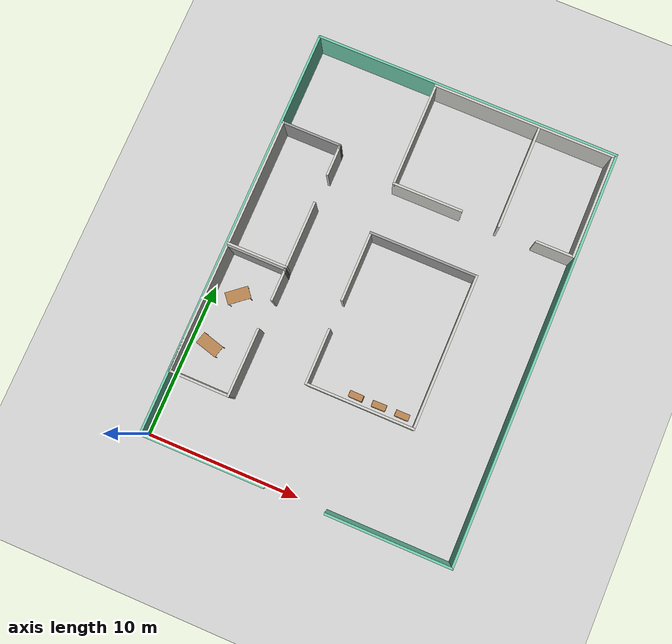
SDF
<sdf version="1.7">
 <world name="default">
  <light name="sun" type="directional">
   <pose>0 0 10 0 -0 0</pose>
   <diffuse>0.8 0.8 0.8 1</diffuse>
   <specular>0.2 0.2 0.2 1</specular>
   <attenuation>
    <range>1000</range>
    <constant>0.9</constant>
    <linear>0.01</linear>
    <quadratic>0.001</quadratic>
   </attenuation>
   <direction>-0.5 0.1 -0.9</direction>
   <spot><inner_angle>0</inner_angle><outer_angle>0</outer_angle><falloff>0</falloff></spot>
  </light>
  <model name="ground_plane">
   <static>1</static>
   <link name="link">
    <collision name="collision">
     <geometry><plane><normal>0 0 1</normal><size>100 100</size></plane></geometry>
     <surface>
      <contact><collide_bitmask>65535</collide_bitmask></contact>
      <friction><ode><mu>100</mu><mu2>50</mu2></ode></friction>
     </surface>
    </collision>
    <visual name="visual">
     <cast_shadows>0</cast_shadows>
     <geometry><plane><normal>0 0 1</normal><size>100 100</size></plane></geometry>
     <material>
      <script><uri>file://media/materials/scripts/gazebo.material</uri><name>Gazebo/Grey</name></script>
     </material>
    </visual>
   </link>
  </model>
  <gravity>0 0 -9.8</gravity>
  <magnetic_field>6e-06 2.3e-05 -4.2e-05</magnetic_field>
  <atmosphere type="adiabatic"/>
  <physics type="ode">
   <max_step_size>0.001</max_step_size>
   <real_time_factor>1</real_time_factor>
   <real_time_update_rate>1000</real_time_update_rate>
  </physics>
  <scene><ambient>0.4 0.4 0.4 1</ambient><background>0.7 0.7 0.7 1</background><shadows>1</shadows></scene>
  <spherical_coordinates>
   <surface_model>EARTH_WGS84</surface_model>
   <latitude_deg>0</latitude_deg>
   <longitude_deg>0</longitude_deg>
   <elevation>0</elevation>
   <heading_deg>0</heading_deg>
  </spherical_coordinates>
  <model name="table">
   <static>1</static>
   <link name="link">
    <collision name="surface">
     <pose>0 0 1 0 -0 0</pose>
     <geometry><box><size>1.5 0.8 0.03</size></box></geometry>
     <surface><friction><ode><mu>0.6</mu><mu2>0.6</mu2></ode></friction></surface>
    </collision>
    <visual name="visual1">
     <pose>0 0 1 0 -0 0</pose>
     <geometry><box><size>1.5 0.8 0.03</size></box></geometry>
     <material>
      <script><uri>file://media/materials/scripts/gazebo.material</uri><name>Gazebo/Wood</name></script>
     </material>
    </visual>
    <collision name="front_left_leg">
     <pose>0.68 0.38 0.5 0 -0 0</pose>
     <geometry><cylinder><radius>0.02</radius><length>1</length></cylinder></geometry>
    </collision>
    <visual name="front_left_leg">
     <pose>0.68 0.38 0.5 0 -0 0</pose>
     <geometry><cylinder><radius>0.02</radius><length>1</length></cylinder></geometry>
     <material>
      <script><uri>file://media/materials/scripts/gazebo.material</uri><name>Gazebo/Grey</name></script>
     </material>
    </visual>
    <collision name="front_right_leg">
     <pose>0.68 -0.38 0.5 0 -0 0</pose>
     <geometry><cylinder><radius>0.02</radius><length>1</length></cylinder></geometry>
    </collision>
    <visual name="front_right_leg">
     <pose>0.68 -0.38 0.5 0 -0 0</pose>
     <geometry><cylinder><radius>0.02</radius><length>1</length></cylinder></geometry>
     <material>
      <script><uri>file://media/materials/scripts/gazebo.material</uri><name>Gazebo/Grey</name></script>
     </material>
    </visual>
    <collision name="back_right_leg">
     <pose>-0.68 -0.38 0.5 0 -0 0</pose>
     <geometry><cylinder><radius>0.02</radius><length>1</length></cylinder></geometry>
    </collision>
    <visual name="back_right_leg">
     <pose>-0.68 -0.38 0.5 0 -0 0</pose>
     <geometry><cylinder><radius>0.02</radius><length>1</length></cylinder></geometry>
     <material>
      <script><uri>file://media/materials/scripts/gazebo.material</uri><name>Gazebo/Grey</name></script>
     </material>
    </visual>
    <collision name="back_left_leg">
     <pose>-0.68 0.38 0.5 0 -0 0</pose>
     <geometry><cylinder><radius>0.02</radius><length>1</length></cylinder></geometry>
    </collision>
    <visual name="back_left_leg">
     <pose>-0.68 0.38 0.5 0 -0 0</pose>
     <geometry><cylinder><radius>0.02</radius><length>1</length></cylinder></geometry>
     <material>
      <script><uri>file://media/materials/scripts/gazebo.material</uri><name>Gazebo/Grey</name></script>
     </material>
    </visual>
   </link>
   <pose>1.33542 6.4911 0 0 0 -0.267799</pose>
  </model>
  <model name="Room1">
   <pose>2.5201 8.28138 0 0 0 -1.57691</pose>
   <link name="Wall_0">
    <collision name="Wall_0_Collision">
     <geometry><box><size>2 0.15 2.5</size></box></geometry>
     <pose>0 0 1.25 0 -0 0</pose>
    </collision>
    <visual name="Wall_0_Visual">
     <pose>0 0 1.25 0 -0 0</pose>
     <geometry><box><size>2 0.15 2.5</size></box></geometry>
     <material>
      <script><uri>file://media/materials/scripts/gazebo.material</uri><name>Gazebo/CeilingTiled</name></script>
      <ambient>1 1 1 1</ambient>
     </material>
     <meta><layer>0</layer></meta>
    </visual>
    <pose>-3.09537 1.4375 0 0 -0 3.14159</pose>
   </link>
   <link name="Wall_4">
    <collision name="Wall_4_Collision">
     <geometry><box><size>4.5 0.15 2.5</size></box></geometry>
     <pose>0 0 1.25 0 -0 0</pose>
    </collision>
    <visual name="Wall_4_Visual">
     <pose>0 0 1.25 0 -0 0</pose>
     <geometry><box><size>4.5 0.15 2.5</size></box></geometry>
     <material>
      <script><uri>file://media/materials/scripts/gazebo.material</uri><name>Gazebo/CeilingTiled</name></script>
      <ambient>1 1 1 1</ambient>
     </material>
     <meta><layer>0</layer></meta>
    </visual>
    <pose>2.00463 1.4175 0 0 -0 0</pose>
   </link>
   <link name="Wall_5">
    <collision name="Wall_5_Collision">
     <geometry><box><size>4 0.15 2.5</size></box></geometry>
     <pose>0 0 1.25 0 -0 0</pose>
    </collision>
    <visual name="Wall_5_Visual">
     <pose>0 0 1.25 0 -0 0</pose>
     <geometry><box><size>4 0.15 2.5</size></box></geometry>
     <material>
      <script><uri>file://media/materials/scripts/gazebo.material</uri><name>Gazebo/CeilingTiled</name></script>
      <ambient>1 1 1 1</ambient>
     </material>
     <meta><layer>0</layer></meta>
    </visual>
    <pose>4.17963 -0.5075 0 0 -0 -1.5708</pose>
   </link>
   <link name="Wall_6">
    <collision name="Wall_6_Collision">
     <geometry><box><size>8.5 0.15 2.5</size></box></geometry>
     <pose>0 0 1.25 0 -0 0</pose>
    </collision>
    <visual name="Wall_6_Visual">
     <pose>0 0 1.25 0 -0 0</pose>
     <geometry><box><size>8.5 0.15 2.5</size></box></geometry>
     <material>
      <script><uri>file://media/materials/scripts/gazebo.material</uri><name>Gazebo/CeilingTiled</name></script>
      <ambient>1 1 1 1</ambient>
     </material>
     <meta><layer>0</layer></meta>
    </visual>
    <pose>0.004627 -2.4325 0 0 -0 3.14159</pose>
   </link>
   <link name="Wall_7">
    <collision name="Wall_7_Collision">
     <geometry><box><size>4 0.15 2.5</size></box></geometry>
     <pose>0 0 1.25 0 -0 0</pose>
    </collision>
    <visual name="Wall_7_Visual">
     <pose>0 0 1.25 0 -0 0</pose>
     <geometry><box><size>4 0.15 2.5</size></box></geometry>
     <material>
      <script><uri>file://media/materials/scripts/gazebo.material</uri><name>Gazebo/Grey</name></script>
      <ambient>1 1 1 1</ambient>
     </material>
     <meta><layer>0</layer></meta>
    </visual>
    <pose>-4.17037 -0.5075 0 0 -0 1.5708</pose>
   </link>
   <link name="Wall_8">
    <collision name="Wall_8_Collision">
     <geometry><box><size>0.15 0.15 2.5</size></box></geometry>
     <pose>0 0 1.25 0 -0 0</pose>
    </collision>
    <visual name="Wall_8_Visual">
     <pose>0 0 1.25 0 -0 0</pose>
     <geometry><box><size>0.15 0.15 2.5</size></box></geometry>
     <material>
      <script><uri>file://media/materials/scripts/gazebo.material</uri><name>Gazebo/Grey</name></script>
      <ambient>1 1 1 1</ambient>
     </material>
     <meta><layer>0</layer></meta>
    </visual>
    <pose>-4.17037 1.4175 0 0 -0 0</pose>
   </link>
   <link name="Wall_9">
    <collision name="Wall_9_Collision">
     <geometry><box><size>0.301327 0.15 2.5</size></box></geometry>
     <pose>0 0 1.25 0 -0 0</pose>
    </collision>
    <visual name="Wall_9_Visual">
     <pose>0 0 1.25 0 -0 0</pose>
     <geometry><box><size>0.301327 0.15 2.5</size></box></geometry>
     <material>
      <script><uri>file://media/materials/scripts/gazebo.material</uri><name>Gazebo/Grey</name></script>
      <ambient>1 1 1 1</ambient>
     </material>
     <meta><layer>0</layer></meta>
    </visual>
    <pose>-4.09537 1.4275 0 0 -0 0.132552</pose>
   </link>
   <static>1</static>
  </model>
  <model name="table_clone">
   <static>1</static>
   <link name="link">
    <collision name="surface">
     <pose>0 0 1 0 -0 0</pose>
     <geometry><box><size>1.5 0.8 0.03</size></box></geometry>
     <surface><friction><ode><mu>0.6</mu><mu2>0.6</mu2></ode></friction></surface>
    </collision>
    <visual name="visual1">
     <pose>0 0 1 0 -0 0</pose>
     <geometry><box><size>1.5 0.8 0.03</size></box></geometry>
     <material>
      <script><uri>file://media/materials/scripts/gazebo.material</uri><name>Gazebo/Wood</name></script>
     </material>
    </visual>
    <collision name="front_left_leg">
     <pose>0.68 0.38 0.5 0 -0 0</pose>
     <geometry><cylinder><radius>0.02</radius><length>1</length></cylinder></geometry>
    </collision>
    <visual name="front_left_leg">
     <pose>0.68 0.38 0.5 0 -0 0</pose>
     <geometry><cylinder><radius>0.02</radius><length>1</length></cylinder></geometry>
     <material>
      <script><uri>file://media/materials/scripts/gazebo.material</uri><name>Gazebo/Grey</name></script>
     </material>
    </visual>
    <collision name="front_right_leg">
     <pose>0.68 -0.38 0.5 0 -0 0</pose>
     <geometry><cylinder><radius>0.02</radius><length>1</length></cylinder></geometry>
    </collision>
    <visual name="front_right_leg">
     <pose>0.68 -0.38 0.5 0 -0 0</pose>
     <geometry><cylinder><radius>0.02</radius><length>1</length></cylinder></geometry>
     <material>
      <script><uri>file://media/materials/scripts/gazebo.material</uri><name>Gazebo/Grey</name></script>
     </material>
    </visual>
    <collision name="back_right_leg">
     <pose>-0.68 -0.38 0.5 0 -0 0</pose>
     <geometry><cylinder><radius>0.02</radius><length>1</length></cylinder></geometry>
    </collision>
    <visual name="back_right_leg">
     <pose>-0.68 -0.38 0.5 0 -0 0</pose>
     <geometry><cylinder><radius>0.02</radius><length>1</length></cylinder></geometry>
     <material>
      <script><uri>file://media/materials/scripts/gazebo.material</uri><name>Gazebo/Grey</name></script>
     </material>
    </visual>
    <collision name="back_left_leg">
     <pose>-0.68 0.38 0.5 0 -0 0</pose>
     <geometry><cylinder><radius>0.02</radius><length>1</length></cylinder></geometry>
    </collision>
    <visual name="back_left_leg">
     <pose>-0.68 0.38 0.5 0 -0 0</pose>
     <geometry><cylinder><radius>0.02</radius><length>1</length></cylinder></geometry>
     <material>
      <script><uri>file://media/materials/scripts/gazebo.material</uri><name>Gazebo/Grey</name></script>
     </material>
    </visual>
   </link>
   <pose>1.68893 9.98293 0 0 -0 0.691055</pose>
  </model>
  <model name="Wall-Building">
   <pose>10.0315 13.5 0 0 -0 0</pose>
   <link name="Wall_15">
    <collision name="Wall_15_Collision">
     <geometry><box><size>8.15 0.15 2.5</size></box></geometry>
     <pose>0 0 1.25 0 -0 0</pose>
    </collision>
    <visual name="Wall_15_Visual">
     <pose>0 0 1.25 0 -0 0</pose>
     <geometry><box><size>8.15 0.15 2.5</size></box></geometry>
     <material>
      <script><uri>file://media/materials/scripts/gazebo.material</uri><name>Gazebo/Grey</name></script>
      <ambient>0.435294 0.796078 0.67451 1</ambient>
     </material>
     <meta><layer>0</layer></meta>
    </visual>
    <pose>-6.0315 -13.5 0 0 -0 0</pose>
   </link>
   <link name="Wall_20">
    <collision name="Wall_20_Collision">
     <geometry><box><size>27.15 0.15 2.5</size></box></geometry>
     <pose>0 0 1.25 0 -0 0</pose>
    </collision>
    <visual name="Wall_20_Visual">
     <pose>0 0 1.25 0 -0 0</pose>
     <geometry><box><size>27.15 0.15 2.5</size></box></geometry>
     <material>
      <script><uri>file://media/materials/scripts/gazebo.material</uri><name>Gazebo/Grey</name></script>
      <ambient>0.435294 0.796078 0.67451 1</ambient>
     </material>
     <meta><layer>0</layer></meta>
    </visual>
    <pose>-10.0315 0 0 0 -0 1.5708</pose>
   </link>
   <link name="Wall_25">
    <collision name="Wall_25_Collision">
     <geometry><box><size>20.213 0.15 2.5</size></box></geometry>
     <pose>0 0 1.25 0 -0 0</pose>
    </collision>
    <visual name="Wall_25_Visual">
     <pose>0 0 1.25 0 -0 0</pose>
     <geometry><box><size>20.213 0.15 2.5</size></box></geometry>
     <material>
      <script><uri>file://media/materials/scripts/gazebo.material</uri><name>Gazebo/Grey</name></script>
      <ambient>0.435294 0.796078 0.67451 1</ambient>
     </material>
     <meta><layer>0</layer></meta>
    </visual>
    <pose>0 13.5 0 0 -0 0</pose>
   </link>
   <link name="Wall_27">
    <collision name="Wall_27_Collision">
     <geometry><box><size>27.15 0.15 2.5</size></box></geometry>
     <pose>0 0 1.25 0 -0 0</pose>
    </collision>
    <visual name="Wall_27_Visual">
     <pose>0 0 1.25 0 -0 0</pose>
     <geometry><box><size>27.15 0.15 2.5</size></box></geometry>
     <material>
      <script><uri>file://media/materials/scripts/gazebo.material</uri><name>Gazebo/Grey</name></script>
      <ambient>0.435294 0.796078 0.67451 1</ambient>
     </material>
     <meta><layer>0</layer></meta>
    </visual>
    <pose>10.0315 0 0 0 -0 -1.5708</pose>
   </link>
   <link name="Wall_29">
    <collision name="Wall_29_Collision">
     <geometry><box><size>8.213 0.15 2.5</size></box></geometry>
     <pose>0 0 1.25 0 -0 0</pose>
    </collision>
    <visual name="Wall_29_Visual">
     <pose>0 0 1.25 0 -0 0</pose>
     <geometry><box><size>8.213 0.15 2.5</size></box></geometry>
     <material>
      <script><uri>file://media/materials/scripts/gazebo.material</uri><name>Gazebo/Grey</name></script>
      <ambient>0.435294 0.796078 0.67451 1</ambient>
     </material>
     <meta><layer>0</layer></meta>
    </visual>
    <pose>6 -13.5 0 0 -0 3.14159</pose>
   </link>
   <static>1</static>
  </model>
  <model name="Room1_0">
   <pose>2.54276 16.7729 -0.00014 -0.00292 -2.7e-05 -1.57136</pose>
   <link name="Wall_0">
    <collision name="Wall_0_Collision">
     <geometry><box><size>2 0.15 2.5</size></box></geometry>
     <pose>0 0 1.25 0 -0 0</pose>
    </collision>
    <visual name="Wall_0_Visual">
     <pose>0 0 1.25 0 -0 0</pose>
     <geometry><box><size>2 0.15 2.5</size></box></geometry>
     <material>
      <script><uri>file://media/materials/scripts/gazebo.material</uri><name>Gazebo/CeilingTiled</name></script>
      <ambient>1 1 1 1</ambient>
     </material>
     <meta><layer>0</layer></meta>
    </visual>
    <pose>-3.09537 1.4375 0 0 -0 3.14159</pose>
   </link>
   <link name="Wall_4">
    <collision name="Wall_4_Collision">
     <geometry><box><size>4.5 0.15 2.5</size></box></geometry>
     <pose>0 0 1.25 0 -0 0</pose>
    </collision>
    <visual name="Wall_4_Visual">
     <pose>0 0 1.25 0 -0 0</pose>
     <geometry><box><size>4.5 0.15 2.5</size></box></geometry>
     <material>
      <script><uri>file://media/materials/scripts/gazebo.material</uri><name>Gazebo/CeilingTiled</name></script>
      <ambient>1 1 1 1</ambient>
     </material>
     <meta><layer>0</layer></meta>
    </visual>
    <pose>2.00463 1.4175 0 0 -0 0</pose>
   </link>
   <link name="Wall_5">
    <collision name="Wall_5_Collision">
     <geometry><box><size>4 0.15 2.5</size></box></geometry>
     <pose>0 0 1.25 0 -0 0</pose>
    </collision>
    <visual name="Wall_5_Visual">
     <pose>0 0 1.25 0 -0 0</pose>
     <geometry><box><size>4 0.15 2.5</size></box></geometry>
     <material>
      <script><uri>file://media/materials/scripts/gazebo.material</uri><name>Gazebo/CeilingTiled</name></script>
      <ambient>1 1 1 1</ambient>
     </material>
     <meta><layer>0</layer></meta>
    </visual>
    <pose>4.17963 -0.5075 0 0 -0 -1.5708</pose>
   </link>
   <link name="Wall_6">
    <collision name="Wall_6_Collision">
     <geometry><box><size>8.5 0.15 2.5</size></box></geometry>
     <pose>0 0 1.25 0 -0 0</pose>
    </collision>
    <visual name="Wall_6_Visual">
     <pose>0 0 1.25 0 -0 0</pose>
     <geometry><box><size>8.5 0.15 2.5</size></box></geometry>
     <material>
      <script><uri>file://media/materials/scripts/gazebo.material</uri><name>Gazebo/CeilingTiled</name></script>
      <ambient>1 1 1 1</ambient>
     </material>
     <meta><layer>0</layer></meta>
    </visual>
    <pose>0.004627 -2.4325 0 0 -0 3.14159</pose>
   </link>
   <link name="Wall_7">
    <collision name="Wall_7_Collision">
     <geometry><box><size>4 0.15 2.5</size></box></geometry>
     <pose>0 0 1.25 0 -0 0</pose>
    </collision>
    <visual name="Wall_7_Visual">
     <pose>0 0 1.25 0 -0 0</pose>
     <geometry><box><size>4 0.15 2.5</size></box></geometry>
     <material>
      <script><uri>file://media/materials/scripts/gazebo.material</uri><name>Gazebo/Grey</name></script>
      <ambient>1 1 1 1</ambient>
     </material>
     <meta><layer>0</layer></meta>
    </visual>
    <pose>-4.17037 -0.5075 0 0 -0 1.5708</pose>
   </link>
   <link name="Wall_8">
    <collision name="Wall_8_Collision">
     <geometry><box><size>0.15 0.15 2.5</size></box></geometry>
     <pose>0 0 1.25 0 -0 0</pose>
    </collision>
    <visual name="Wall_8_Visual">
     <pose>0 0 1.25 0 -0 0</pose>
     <geometry><box><size>0.15 0.15 2.5</size></box></geometry>
     <material>
      <script><uri>file://media/materials/scripts/gazebo.material</uri><name>Gazebo/Grey</name></script>
      <ambient>1 1 1 1</ambient>
     </material>
     <meta><layer>0</layer></meta>
    </visual>
    <pose>-4.17037 1.4175 0 0 -0 0</pose>
   </link>
   <link name="Wall_9">
    <collision name="Wall_9_Collision">
     <geometry><box><size>0.301327 0.15 2.5</size></box></geometry>
     <pose>0 0 1.25 0 -0 0</pose>
    </collision>
    <visual name="Wall_9_Visual">
     <pose>0 0 1.25 0 -0 0</pose>
     <geometry><box><size>0.301327 0.15 2.5</size></box></geometry>
     <material>
      <script><uri>file://media/materials/scripts/gazebo.material</uri><name>Gazebo/Grey</name></script>
      <ambient>1 1 1 1</ambient>
     </material>
     <meta><layer>0</layer></meta>
    </visual>
    <pose>-4.09537 1.4275 0 0 -0 0.132552</pose>
   </link>
   <static>1</static>
  </model>
  <model name="Room2">
   <pose>9.9875 13.4625 0 0 -0 0</pose>
   <link name="Wall_0">
    <collision name="Wall_0_Collision">
     <geometry><box><size>7 0.15 2.5</size></box></geometry>
     <pose>0 0 1.25 0 -0 0</pose>
    </collision>
    <visual name="Wall_0_Visual">
     <pose>0 0 1.25 0 -0 0</pose>
     <geometry><box><size>7 0.15 2.5</size></box></geometry>
     <material>
      <script><uri>file://media/materials/scripts/gazebo.material</uri><name>Gazebo/CeilingTiled</name></script>
      <ambient>1 1 1 1</ambient>
     </material>
     <meta><layer>0</layer></meta>
    </visual>
    <pose>-1.9875 9.9625 0 0 -0 -1.5708</pose>
   </link>
   <link name="Wall_10">
    <collision name="Wall_10_Collision">
     <geometry><box><size>4.65 0.15 2.5</size></box></geometry>
     <pose>0 0 1.25 0 -0 0</pose>
    </collision>
    <visual name="Wall_10_Visual">
     <pose>0 0 1.25 0 -0 0</pose>
     <geometry><box><size>4.65 0.15 2.5</size></box></geometry>
     <material>
      <script><uri>file://media/materials/scripts/gazebo.material</uri><name>Gazebo/CeilingTiled</name></script>
      <ambient>1 1 1 1</ambient>
     </material>
     <meta><layer>0</layer></meta>
    </visual>
    <pose>0.2625 6.5375 0 0 -0 0</pose>
   </link>
   <link name="Wall_12">
    <collision name="Wall_12_Collision">
     <geometry><box><size>2.55 0.15 2.5</size></box></geometry>
     <pose>0 0 1.25 0 -0 0</pose>
    </collision>
    <visual name="Wall_12_Visual">
     <pose>0 0 1.25 0 -0 0</pose>
     <geometry><box><size>2.55 0.15 2.5</size></box></geometry>
     <material>
      <script><uri>file://media/materials/scripts/gazebo.material</uri><name>Gazebo/CeilingTiled</name></script>
      <ambient>1 1 1 1</ambient>
     </material>
     <meta><layer>0</layer></meta>
    </visual>
    <pose>8.7125 6.5375 0 0 -0 3.14159</pose>
   </link>
   <link name="Wall_2">
    <collision name="Wall_2_Collision">
     <geometry><box><size>12.05 0.15 2.5</size></box></geometry>
     <pose>0 0 1.25 0 -0 0</pose>
    </collision>
    <visual name="Wall_2_Visual">
     <pose>0 0 1.25 0 -0 0</pose>
     <geometry><box><size>12.05 0.15 2.5</size></box></geometry>
     <material>
      <script><uri>file://media/materials/scripts/gazebo.material</uri><name>Gazebo/CeilingTiled</name></script>
      <ambient>1 1 1 1</ambient>
     </material>
     <meta><layer>0</layer></meta>
    </visual>
    <pose>3.9625 13.3875 0 0 -0 0</pose>
   </link>
   <link name="Wall_4">
    <collision name="Wall_4_Collision">
     <geometry><box><size>7 0.15 2.5</size></box></geometry>
     <pose>0 0 1.25 0 -0 0</pose>
    </collision>
    <visual name="Wall_4_Visual">
     <pose>0 0 1.25 0 -0 0</pose>
     <geometry><box><size>7 0.15 2.5</size></box></geometry>
     <material>
      <script><uri>file://media/materials/scripts/gazebo.material</uri><name>Gazebo/CeilingTiled</name></script>
      <ambient>1 1 1 1</ambient>
     </material>
     <meta><layer>0</layer></meta>
    </visual>
    <pose>9.9125 9.9625 0 0 -0 -1.5708</pose>
   </link>
   <link name="Wall_7">
    <collision name="Wall_7_Collision">
     <geometry><box><size>7 0.15 2.5</size></box></geometry>
     <pose>0 0 1.25 0 -0 0</pose>
    </collision>
    <visual name="Wall_7_Visual">
     <pose>0 0 1.25 0 -0 0</pose>
     <geometry><box><size>7 0.15 2.5</size></box></geometry>
     <material>
      <script><uri>file://media/materials/scripts/gazebo.material</uri><name>Gazebo/CeilingTiled</name></script>
      <ambient>1 1 1 1</ambient>
     </material>
     <meta><layer>0</layer></meta>
    </visual>
    <pose>5.0125 9.9625 0 0 -0 -1.5708</pose>
   </link>
   <static>1</static>
  </model>
  <model name="Room3">
   <pose>7.4453 8.6191 0 0 -0 0</pose>
   <link name="Wall_0">
    <collision name="Wall_0_Collision">
     <geometry><box><size>10.15 0.15 2.5</size></box></geometry>
     <pose>0 0 1.25 0 -0 0</pose>
    </collision>
    <visual name="Wall_0_Visual">
     <pose>0 0 1.25 0 -0 0</pose>
     <geometry><box><size>10.15 0.15 2.5</size></box></geometry>
     <material>
      <script><uri>file://media/materials/scripts/gazebo.material</uri><name>Gazebo/CeilingTiled</name></script>
      <ambient>1 1 1 1</ambient>
     </material>
     <meta><layer>0</layer></meta>
    </visual>
    <pose>7.4625 2.9625 0 0 -0 -1.5708</pose>
   </link>
   <link name="Wall_2">
    <collision name="Wall_2_Collision">
     <geometry><box><size>7.15 0.15 2.5</size></box></geometry>
     <pose>0 0 1.25 0 -0 0</pose>
    </collision>
    <visual name="Wall_2_Visual">
     <pose>0 0 1.25 0 -0 0</pose>
     <geometry><box><size>7.15 0.15 2.5</size></box></geometry>
     <material>
      <script><uri>file://media/materials/scripts/gazebo.material</uri><name>Gazebo/Grey</name></script>
      <ambient>1 1 1 1</ambient>
     </material>
     <meta><layer>0</layer></meta>
    </visual>
    <pose>3.9625 7.9625 0 0 -0 3.14159</pose>
   </link>
   <link name="Wall_5">
    <collision name="Wall_5_Collision">
     <geometry><box><size>4.65 0.15 2.5</size></box></geometry>
     <pose>0 0 1.25 0 -0 0</pose>
    </collision>
    <visual name="Wall_5_Visual">
     <pose>0 0 1.25 0 -0 0</pose>
     <geometry><box><size>4.65 0.15 2.5</size></box></geometry>
     <material>
      <script><uri>file://media/materials/scripts/gazebo.material</uri><name>Gazebo/CeilingTiled</name></script>
      <ambient>1 1 1 1</ambient>
     </material>
     <meta><layer>0</layer></meta>
    </visual>
    <pose>0.4625 5.7125 0 0 -0 -1.5708</pose>
   </link>
   <link name="Wall_7">
    <collision name="Wall_7_Collision">
     <geometry><box><size>7.15 0.15 2.5</size></box></geometry>
     <pose>0 0 1.25 0 -0 0</pose>
    </collision>
    <visual name="Wall_7_Visual">
     <pose>0 0 1.25 0 -0 0</pose>
     <geometry><box><size>7.15 0.15 2.5</size></box></geometry>
     <material>
      <script><uri>file://media/materials/scripts/gazebo.material</uri><name>Gazebo/CeilingTiled</name></script>
      <ambient>1 1 1 1</ambient>
     </material>
     <meta><layer>0</layer></meta>
    </visual>
    <pose>3.9625 -2.0375 0 0 -0 3.14159</pose>
   </link>
   <link name="Wall_9">
    <collision name="Wall_9_Collision">
     <geometry><box><size>3.65 0.15 2.5</size></box></geometry>
     <pose>0 0 1.25 0 -0 0</pose>
    </collision>
    <visual name="Wall_9_Visual">
     <pose>0 0 1.25 0 -0 0</pose>
     <geometry><box><size>3.65 0.15 2.5</size></box></geometry>
     <material>
      <script><uri>file://media/materials/scripts/gazebo.material</uri><name>Gazebo/CeilingTiled</name></script>
      <ambient>1 1 1 1</ambient>
     </material>
     <meta><layer>0</layer></meta>
    </visual>
    <pose>0.4625 -0.2875 0 0 -0 1.5708</pose>
   </link>
   <static>1</static>
  </model>
  <model name="bookshelf">
   <static>1</static>
   <link name="link">
    <inertial><mass>1</mass></inertial>
    <collision name="back">
     <pose>0 0.005 0.6 0 -0 0</pose>
     <geometry><box><size>0.9 0.01 1.2</size></box></geometry>
    </collision>
    <visual name="visual1">
     <pose>0 0.005 0.6 0 -0 0</pose>
     <geometry><box><size>0.9 0.01 1.2</size></box></geometry>
     <material>
      <script><uri>file://media/materials/scripts/gazebo.material</uri><name>Gazebo/Wood</name></script>
     </material>
    </visual>
    <collision name="left_side">
     <pose>0.45 -0.195 0.6 0 -0 0</pose>
     <geometry><box><size>0.02 0.4 1.2</size></box></geometry>
    </collision>
    <visual name="visual2">
     <pose>0.45 -0.195 0.6 0 -0 0</pose>
     <geometry><box><size>0.02 0.4 1.2</size></box></geometry>
     <material>
      <script><uri>file://media/materials/scripts/gazebo.material</uri><name>Gazebo/Wood</name></script>
     </material>
    </visual>
    <collision name="right_side">
     <pose>-0.45 -0.195 0.6 0 -0 0</pose>
     <geometry><box><size>0.02 0.4 1.2</size></box></geometry>
    </collision>
    <visual name="visual3">
     <pose>-0.45 -0.195 0.6 0 -0 0</pose>
     <geometry><box><size>0.02 0.4 1.2</size></box></geometry>
     <material>
      <script><uri>file://media/materials/scripts/gazebo.material</uri><name>Gazebo/Wood</name></script>
     </material>
    </visual>
    <collision name="bottom">
     <pose>0 -0.195 0.03 0 -0 0</pose>
     <geometry><box><size>0.88 0.4 0.06</size></box></geometry>
    </collision>
    <visual name="visual4">
     <pose>0 -0.195 0.03 0 -0 0</pose>
     <geometry><box><size>0.88 0.4 0.06</size></box></geometry>
     <material>
      <script><uri>file://media/materials/scripts/gazebo.material</uri><name>Gazebo/Wood</name></script>
     </material>
    </visual>
    <collision name="top">
     <pose>0 -0.195 1.19 0 -0 0</pose>
     <geometry><box><size>0.88 0.4 0.02</size></box></geometry>
    </collision>
    <visual name="visual5">
     <pose>0 -0.195 1.19 0 -0 0</pose>
     <geometry><box><size>0.88 0.4 0.02</size></box></geometry>
     <material>
      <script><uri>file://media/materials/scripts/gazebo.material</uri><name>Gazebo/Wood</name></script>
     </material>
    </visual>
    <collision name="low_shelf">
     <pose>0 -0.195 0.43 0 -0 0</pose>
     <geometry><box><size>0.88 0.4 0.02</size></box></geometry>
    </collision>
    <visual name="visual6">
     <pose>0 -0.195 0.43 0 -0 0</pose>
     <geometry><box><size>0.88 0.4 0.02</size></box></geometry>
     <material>
      <script><uri>file://media/materials/scripts/gazebo.material</uri><name>Gazebo/Wood</name></script>
     </material>
    </visual>
    <collision name="high_shelf">
     <pose>0 -0.195 0.8 0 -0 0</pose>
     <geometry><box><size>0.88 0.4 0.02</size></box></geometry>
    </collision>
    <visual name="visual7">
     <pose>0 -0.195 0.8 0 -0 0</pose>
     <geometry><box><size>0.88 0.4 0.02</size></box></geometry>
     <material>
      <script><uri>file://media/materials/scripts/gazebo.material</uri><name>Gazebo/Wood</name></script>
     </material>
    </visual>
   </link>
   <pose>13.9727 6.90622 0 0 -0 3.1386</pose>
  </model>
  <model name="bookshelf_0">
   <static>1</static>
   <link name="link">
    <inertial><mass>1</mass></inertial>
    <collision name="back">
     <pose>0 0.005 0.6 0 -0 0</pose>
     <geometry><box><size>0.9 0.01 1.2</size></box></geometry>
    </collision>
    <visual name="visual1">
     <pose>0 0.005 0.6 0 -0 0</pose>
     <geometry><box><size>0.9 0.01 1.2</size></box></geometry>
     <material>
      <script><uri>file://media/materials/scripts/gazebo.material</uri><name>Gazebo/Wood</name></script>
     </material>
    </visual>
    <collision name="left_side">
     <pose>0.45 -0.195 0.6 0 -0 0</pose>
     <geometry><box><size>0.02 0.4 1.2</size></box></geometry>
    </collision>
    <visual name="visual2">
     <pose>0.45 -0.195 0.6 0 -0 0</pose>
     <geometry><box><size>0.02 0.4 1.2</size></box></geometry>
     <material>
      <script><uri>file://media/materials/scripts/gazebo.material</uri><name>Gazebo/Wood</name></script>
     </material>
    </visual>
    <collision name="right_side">
     <pose>-0.45 -0.195 0.6 0 -0 0</pose>
     <geometry><box><size>0.02 0.4 1.2</size></box></geometry>
    </collision>
    <visual name="visual3">
     <pose>-0.45 -0.195 0.6 0 -0 0</pose>
     <geometry><box><size>0.02 0.4 1.2</size></box></geometry>
     <material>
      <script><uri>file://media/materials/scripts/gazebo.material</uri><name>Gazebo/Wood</name></script>
     </material>
    </visual>
    <collision name="bottom">
     <pose>0 -0.195 0.03 0 -0 0</pose>
     <geometry><box><size>0.88 0.4 0.06</size></box></geometry>
    </collision>
    <visual name="visual4">
     <pose>0 -0.195 0.03 0 -0 0</pose>
     <geometry><box><size>0.88 0.4 0.06</size></box></geometry>
     <material>
      <script><uri>file://media/materials/scripts/gazebo.material</uri><name>Gazebo/Wood</name></script>
     </material>
    </visual>
    <collision name="top">
     <pose>0 -0.195 1.19 0 -0 0</pose>
     <geometry><box><size>0.88 0.4 0.02</size></box></geometry>
    </collision>
    <visual name="visual5">
     <pose>0 -0.195 1.19 0 -0 0</pose>
     <geometry><box><size>0.88 0.4 0.02</size></box></geometry>
     <material>
      <script><uri>file://media/materials/scripts/gazebo.material</uri><name>Gazebo/Wood</name></script>
     </material>
    </visual>
    <collision name="low_shelf">
     <pose>0 -0.195 0.43 0 -0 0</pose>
     <geometry><box><size>0.88 0.4 0.02</size></box></geometry>
    </collision>
    <visual name="visual6">
     <pose>0 -0.195 0.43 0 -0 0</pose>
     <geometry><box><size>0.88 0.4 0.02</size></box></geometry>
     <material>
      <script><uri>file://media/materials/scripts/gazebo.material</uri><name>Gazebo/Wood</name></script>
     </material>
    </visual>
    <collision name="high_shelf">
     <pose>0 -0.195 0.8 0 -0 0</pose>
     <geometry><box><size>0.88 0.4 0.02</size></box></geometry>
    </collision>
    <visual name="visual7">
     <pose>0 -0.195 0.8 0 -0 0</pose>
     <geometry><box><size>0.88 0.4 0.02</size></box></geometry>
     <material>
      <script><uri>file://media/materials/scripts/gazebo.material</uri><name>Gazebo/Wood</name></script>
     </material>
    </visual>
   </link>
   <pose>12.444 6.89101 0 0 0 -3.1279</pose>
  </model>
  <model name="bookshelf_1">
   <static>1</static>
   <link name="link">
    <inertial><mass>1</mass></inertial>
    <collision name="back">
     <pose>0 0.005 0.6 0 -0 0</pose>
     <geometry><box><size>0.9 0.01 1.2</size></box></geometry>
    </collision>
    <visual name="visual1">
     <pose>0 0.005 0.6 0 -0 0</pose>
     <geometry><box><size>0.9 0.01 1.2</size></box></geometry>
     <material>
      <script><uri>file://media/materials/scripts/gazebo.material</uri><name>Gazebo/Wood</name></script>
     </material>
    </visual>
    <collision name="left_side">
     <pose>0.45 -0.195 0.6 0 -0 0</pose>
     <geometry><box><size>0.02 0.4 1.2</size></box></geometry>
    </collision>
    <visual name="visual2">
     <pose>0.45 -0.195 0.6 0 -0 0</pose>
     <geometry><box><size>0.02 0.4 1.2</size></box></geometry>
     <material>
      <script><uri>file://media/materials/scripts/gazebo.material</uri><name>Gazebo/Wood</name></script>
     </material>
    </visual>
    <collision name="right_side">
     <pose>-0.45 -0.195 0.6 0 -0 0</pose>
     <geometry><box><size>0.02 0.4 1.2</size></box></geometry>
    </collision>
    <visual name="visual3">
     <pose>-0.45 -0.195 0.6 0 -0 0</pose>
     <geometry><box><size>0.02 0.4 1.2</size></box></geometry>
     <material>
      <script><uri>file://media/materials/scripts/gazebo.material</uri><name>Gazebo/Wood</name></script>
     </material>
    </visual>
    <collision name="bottom">
     <pose>0 -0.195 0.03 0 -0 0</pose>
     <geometry><box><size>0.88 0.4 0.06</size></box></geometry>
    </collision>
    <visual name="visual4">
     <pose>0 -0.195 0.03 0 -0 0</pose>
     <geometry><box><size>0.88 0.4 0.06</size></box></geometry>
     <material>
      <script><uri>file://media/materials/scripts/gazebo.material</uri><name>Gazebo/Wood</name></script>
     </material>
    </visual>
    <collision name="top">
     <pose>0 -0.195 1.19 0 -0 0</pose>
     <geometry><box><size>0.88 0.4 0.02</size></box></geometry>
    </collision>
    <visual name="visual5">
     <pose>0 -0.195 1.19 0 -0 0</pose>
     <geometry><box><size>0.88 0.4 0.02</size></box></geometry>
     <material>
      <script><uri>file://media/materials/scripts/gazebo.material</uri><name>Gazebo/Wood</name></script>
     </material>
    </visual>
    <collision name="low_shelf">
     <pose>0 -0.195 0.43 0 -0 0</pose>
     <geometry><box><size>0.88 0.4 0.02</size></box></geometry>
    </collision>
    <visual name="visual6">
     <pose>0 -0.195 0.43 0 -0 0</pose>
     <geometry><box><size>0.88 0.4 0.02</size></box></geometry>
     <material>
      <script><uri>file://media/materials/scripts/gazebo.material</uri><name>Gazebo/Wood</name></script>
     </material>
    </visual>
    <collision name="high_shelf">
     <pose>0 -0.195 0.8 0 -0 0</pose>
     <geometry><box><size>0.88 0.4 0.02</size></box></geometry>
    </collision>
    <visual name="visual7">
     <pose>0 -0.195 0.8 0 -0 0</pose>
     <geometry><box><size>0.88 0.4 0.02</size></box></geometry>
     <material>
      <script><uri>file://media/materials/scripts/gazebo.material</uri><name>Gazebo/Wood</name></script>
     </material>
    </visual>
   </link>
   <pose>10.9134 6.89729 0 0 -0 3.12671</pose>
  </model>
 </world>
</sdf>
